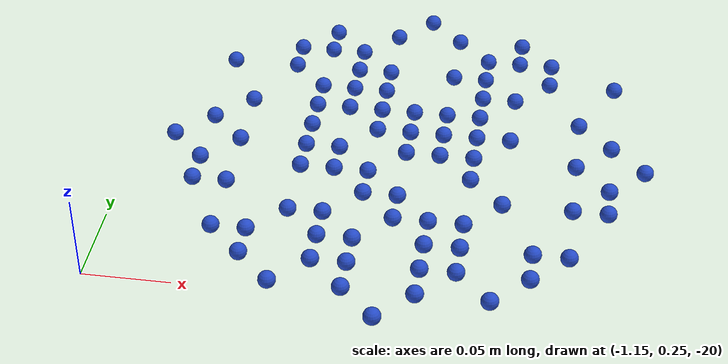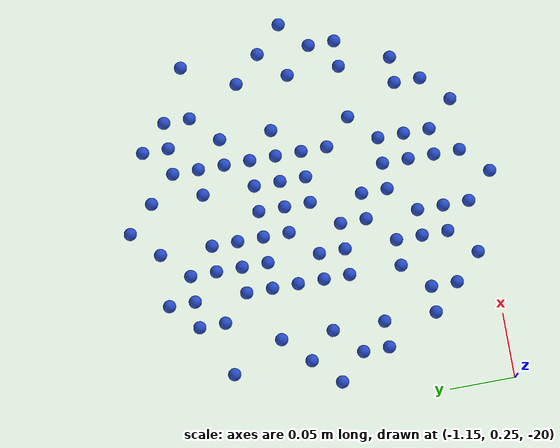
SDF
<sdf version="1.7">
 <model name="Washbasin_Water">
  <static>true</static>
  <link name="washbasin_water_br">
   <pose>-0.99 0.38 -20 0 0 0</pose>
   <visual name="green_mark_centre1_visual">
    <geometry><sphere><radius>0.005</radius></sphere></geometry>
    <material><script><name>Gazebo/BlueGlow</name></script></material>
   </visual>
   <visual name="green_mark_centre2_visual">
    <pose>0.02 0 0 0 0 0</pose>
    <geometry><sphere><radius>0.005</radius></sphere></geometry>
    <material><script><name>Gazebo/BlueGlow</name></script></material>
   </visual>
   <visual name="green_mark_centre4_visual">
    <pose>0.04 0 0 0 0 0</pose>
    <geometry><sphere><radius>0.005</radius></sphere></geometry>
    <material><script><name>Gazebo/BlueGlow</name></script></material>
   </visual>
   <visual name="green_mark_centre5_visual">
    <pose>-0.04 0 0 0 0 0</pose>
    <geometry><sphere><radius>0.005</radius></sphere></geometry>
    <material><script><name>Gazebo/BlueGlow</name></script></material>
   </visual>
   <visual name="green_mark_centre7_visual">
    <pose>-0.06 0 0 0 0 0</pose>
    <geometry><sphere><radius>0.005</radius></sphere></geometry>
    <material><script><name>Gazebo/BlueGlow</name></script></material>
   </visual>
   <visual name="green_mark_centre8_visual">
    <pose>0 0.02 0 0 0 0</pose>
    <geometry><sphere><radius>0.005</radius></sphere></geometry>
    <material><script><name>Gazebo/BlueGlow</name></script></material>
   </visual>
   <visual name="green_mark_centre10_visual">
    <pose>0 0.04 0 0 0 0</pose>
    <geometry><sphere><radius>0.005</radius></sphere></geometry>
    <material><script><name>Gazebo/BlueGlow</name></script></material>
   </visual>
   <visual name="green_mark_centre11_visual">
    <pose>0 -0.04 0 0 0 0</pose>
    <geometry><sphere><radius>0.005</radius></sphere></geometry>
    <material><script><name>Gazebo/BlueGlow</name></script></material>
   </visual>
   <visual name="green_mark_centre13_visual">
    <pose>0 -0.06 0 0 0 0</pose>
    <geometry><sphere><radius>0.005</radius></sphere></geometry>
    <material><script><name>Gazebo/BlueGlow</name></script></material>
   </visual>
   <visual name="green_mark_centre14_visual">
    <pose>0.02 0.02 0 0 0 0</pose>
    <geometry><sphere><radius>0.005</radius></sphere></geometry>
    <material><script><name>Gazebo/BlueGlow</name></script></material>
   </visual>
   <visual name="green_mark_centre16_visual">
    <pose>-0.02 -0.02 0 0 0 0</pose>
    <geometry><sphere><radius>0.005</radius></sphere></geometry>
    <material><script><name>Gazebo/BlueGlow</name></script></material>
   </visual>
   <visual name="green_mark_centre17_visual">
    <pose>-0.02 0.02 0 0 0 0</pose>
    <geometry><sphere><radius>0.005</radius></sphere></geometry>
    <material><script><name>Gazebo/BlueGlow</name></script></material>
   </visual>
   <visual name="green_mark_centre19_visual">
    <pose>0.04 0.04 0 0 0 0</pose>
    <geometry><sphere><radius>0.005</radius></sphere></geometry>
    <material><script><name>Gazebo/BlueGlow</name></script></material>
   </visual>
   <visual name="green_mark_centre20_visual">
    <pose>-0.04 0.04 0 0 0 0</pose>
    <geometry><sphere><radius>0.005</radius></sphere></geometry>
    <material><script><name>Gazebo/BlueGlow</name></script></material>
   </visual>
   <visual name="green_mark_centre22_visual">
    <pose>0.04 0.06 0 0 0 0</pose>
    <geometry><sphere><radius>0.005</radius></sphere></geometry>
    <material><script><name>Gazebo/BlueGlow</name></script></material>
   </visual>
   <visual name="green_mark_centre23_visual">
    <pose>0.04 -0.06 0 0 0 0</pose>
    <geometry><sphere><radius>0.005</radius></sphere></geometry>
    <material><script><name>Gazebo/BlueGlow</name></script></material>
   </visual>
   <visual name="green_mark_centre25_visual">
    <pose>-0.04 0.06 0 0 0 0</pose>
    <geometry><sphere><radius>0.005</radius></sphere></geometry>
    <material><script><name>Gazebo/BlueGlow</name></script></material>
   </visual>
   <visual name="green_mark_centre26_visual">
    <pose>-0.04 -0.06 0 0 0 0</pose>
    <geometry><sphere><radius>0.005</radius></sphere></geometry>
    <material><script><name>Gazebo/BlueGlow</name></script></material>
   </visual>
   <visual name="green_mark_centre28_visual">
    <pose>0.06 0.06 0 0 0 0</pose>
    <geometry><sphere><radius>0.005</radius></sphere></geometry>
    <material><script><name>Gazebo/BlueGlow</name></script></material>
   </visual>
   <visual name="green_mark_centre29_visual">
    <pose>-0.06 0.06 0 0 0 0</pose>
    <geometry><sphere><radius>0.005</radius></sphere></geometry>
    <material><script><name>Gazebo/BlueGlow</name></script></material>
   </visual>
   <visual name="green_mark_centre31_visual">
    <pose>-0.06 -0.06 0 0 0 0</pose>
    <geometry><sphere><radius>0.005</radius></sphere></geometry>
    <material><script><name>Gazebo/BlueGlow</name></script></material>
   </visual>
   <visual name="green_mark_centre32_visual">
    <pose>0.02 0.04 0 0 0 0</pose>
    <geometry><sphere><radius>0.005</radius></sphere></geometry>
    <material><script><name>Gazebo/BlueGlow</name></script></material>
   </visual>
   <visual name="green_mark_centre34_visual">
    <pose>-0.02 0.04 0 0 0 0</pose>
    <geometry><sphere><radius>0.005</radius></sphere></geometry>
    <material><script><name>Gazebo/BlueGlow</name></script></material>
   </visual>
   <visual name="green_mark_centre35_visual">
    <pose>-0.02 -0.04 0 0 0 0</pose>
    <geometry><sphere><radius>0.005</radius></sphere></geometry>
    <material><script><name>Gazebo/BlueGlow</name></script></material>
   </visual>
   <visual name="green_mark_centre37_visual">
    <pose>0.02 -0.06 0 0 0 0</pose>
    <geometry><sphere><radius>0.005</radius></sphere></geometry>
    <material><script><name>Gazebo/BlueGlow</name></script></material>
   </visual>
   <visual name="green_mark_centre38_visual">
    <pose>-0.02 0.06 0 0 0 0</pose>
    <geometry><sphere><radius>0.005</radius></sphere></geometry>
    <material><script><name>Gazebo/BlueGlow</name></script></material>
   </visual>
   <visual name="green_mark_centre40_visual">
    <pose>0.04 0.02 0 0 0 0</pose>
    <geometry><sphere><radius>0.005</radius></sphere></geometry>
    <material><script><name>Gazebo/BlueGlow</name></script></material>
   </visual>
   <visual name="green_mark_centre41_visual">
    <pose>0.04 -0.02 0 0 0 0</pose>
    <geometry><sphere><radius>0.005</radius></sphere></geometry>
    <material><script><name>Gazebo/BlueGlow</name></script></material>
   </visual>
   <visual name="green_mark_centre43_visual">
    <pose>-0.04 -0.02 0 0 0 0</pose>
    <geometry><sphere><radius>0.005</radius></sphere></geometry>
    <material><script><name>Gazebo/BlueGlow</name></script></material>
   </visual>
   <visual name="green_mark_centre44_visual">
    <pose>0.06 0.02 0 0 0 0</pose>
    <geometry><sphere><radius>0.005</radius></sphere></geometry>
    <material><script><name>Gazebo/BlueGlow</name></script></material>
   </visual>
   <visual name="green_mark_centre46_visual">
    <pose>-0.06 0.02 0 0 0 0</pose>
    <geometry><sphere><radius>0.005</radius></sphere></geometry>
    <material><script><name>Gazebo/BlueGlow</name></script></material>
   </visual>
   <visual name="green_mark_centre47_visual">
    <pose>-0.06 -0.02 0 0 0 0</pose>
    <geometry><sphere><radius>0.005</radius></sphere></geometry>
    <material><script><name>Gazebo/BlueGlow</name></script></material>
   </visual>
   <visual name="green_mark_centre49_visual">
    <pose>0.06 -0.04 0 0 0 0</pose>
    <geometry><sphere><radius>0.005</radius></sphere></geometry>
    <material><script><name>Gazebo/BlueGlow</name></script></material>
   </visual>
   <visual name="green_mark_centre50_visual">
    <pose>-0.06 0.04 0 0 0 0</pose>
    <geometry><sphere><radius>0.005</radius></sphere></geometry>
    <material><script><name>Gazebo/BlueGlow</name></script></material>
   </visual>
   <visual name="green_mark_top1_visual">
    <pose>-0.06 0.12 0 0 0 0</pose>
    <geometry><sphere><radius>0.005</radius></sphere></geometry>
    <material><script><name>Gazebo/BlueGlow</name></script></material>
   </visual>
   <visual name="green_mark_top2_visual">
    <pose>-0.06 0.10 0 0 0 0</pose>
    <geometry><sphere><radius>0.005</radius></sphere></geometry>
    <material><script><name>Gazebo/BlueGlow</name></script></material>
   </visual>
   <visual name="green_mark_top4_visual">
    <pose>-0.04 0.10 0 0 0 0</pose>
    <geometry><sphere><radius>0.005</radius></sphere></geometry>
    <material><script><name>Gazebo/BlueGlow</name></script></material>
   </visual>
   <visual name="green_mark_top7_visual">
    <pose>-0.04 0.08 0 0 0 0</pose>
    <geometry><sphere><radius>0.005</radius></sphere></geometry>
    <material><script><name>Gazebo/BlueGlow</name></script></material>
   </visual>
   <visual name="green_mark_top8_visual">
    <pose>-0.02 0.12 0 0 0 0</pose>
    <geometry><sphere><radius>0.005</radius></sphere></geometry>
    <material><script><name>Gazebo/BlueGlow</name></script></material>
   </visual>
   <visual name="green_mark_top10_visual">
    <pose>-0.02 0.12 0 0 0 0</pose>
    <geometry><sphere><radius>0.005</radius></sphere></geometry>
    <material><script><name>Gazebo/BlueGlow</name></script></material>
   </visual>
   <visual name="green_mark_top12_visual">
    <pose>-0.02 0.08 0 0 0 0</pose>
    <geometry><sphere><radius>0.005</radius></sphere></geometry>
    <material><script><name>Gazebo/BlueGlow</name></script></material>
   </visual>
   <visual name="green_mark_top14_visual">
    <pose>0.06 0.12 0 0 0 0</pose>
    <geometry><sphere><radius>0.005</radius></sphere></geometry>
    <material><script><name>Gazebo/BlueGlow</name></script></material>
   </visual>
   <visual name="green_mark_top15_visual">
    <pose>0.06 0.10 0 0 0 0</pose>
    <geometry><sphere><radius>0.005</radius></sphere></geometry>
    <material><script><name>Gazebo/BlueGlow</name></script></material>
   </visual>
   <visual name="green_mark_top17_visual">
    <pose>0.04 0.10 0 0 0 0</pose>
    <geometry><sphere><radius>0.005</radius></sphere></geometry>
    <material><script><name>Gazebo/BlueGlow</name></script></material>
   </visual>
   <visual name="green_mark_top20_visual">
    <pose>0.04 0.08 0 0 0 0</pose>
    <geometry><sphere><radius>0.005</radius></sphere></geometry>
    <material><script><name>Gazebo/BlueGlow</name></script></material>
   </visual>
   <visual name="green_mark_top21_visual">
    <pose>0.02 0.12 0 0 0 0</pose>
    <geometry><sphere><radius>0.005</radius></sphere></geometry>
    <material><script><name>Gazebo/BlueGlow</name></script></material>
   </visual>
   <visual name="green_mark_top23_visual">
    <pose>0.02 0.12 0 0 0 0</pose>
    <geometry><sphere><radius>0.005</radius></sphere></geometry>
    <material><script><name>Gazebo/BlueGlow</name></script></material>
   </visual>
   <visual name="green_mark_top25_visual">
    <pose>0.02 0.08 0 0 0 0</pose>
    <geometry><sphere><radius>0.005</radius></sphere></geometry>
    <material><script><name>Gazebo/BlueGlow</name></script></material>
   </visual>
   <visual name="green_mark_top88_visual">
    <pose>0.0 0.14 0 0 0 0</pose>
    <geometry><sphere><radius>0.005</radius></sphere></geometry>
    <material><script><name>Gazebo/BlueGlow</name></script></material>
   </visual>
   <visual name="green_mark_top89_visual">
    <pose>0.0 -0.14 0 0 0 0</pose>
    <geometry><sphere><radius>0.005</radius></sphere></geometry>
    <material><script><name>Gazebo/BlueGlow</name></script></material>
   </visual>
   <visual name="green_mark_top3_visual">
    <pose>-0.06 -0.12 0 0 0 0</pose>
    <geometry><sphere><radius>0.005</radius></sphere></geometry>
    <material><script><name>Gazebo/BlueGlow</name></script></material>
   </visual>
   <visual name="green_mark_top5_visual">
    <pose>-0.04 -0.10 0 0 0 0</pose>
    <geometry><sphere><radius>0.005</radius></sphere></geometry>
    <material><script><name>Gazebo/BlueGlow</name></script></material>
   </visual>
   <visual name="green_mark_top6_visual">
    <pose>-0.04 -0.08 0 0 0 0</pose>
    <geometry><sphere><radius>0.005</radius></sphere></geometry>
    <material><script><name>Gazebo/BlueGlow</name></script></material>
   </visual>
   <visual name="green_mark_top9_visual">
    <pose>-0.02 -0.12 0 0 0 0</pose>
    <geometry><sphere><radius>0.005</radius></sphere></geometry>
    <material><script><name>Gazebo/BlueGlow</name></script></material>
   </visual>
   <visual name="green_mark_top11_visual">
    <pose>-0.02 -0.10 0 0 0 0</pose>
    <geometry><sphere><radius>0.005</radius></sphere></geometry>
    <material><script><name>Gazebo/BlueGlow</name></script></material>
   </visual>
   <visual name="green_mark_top13_visual">
    <pose>-0.02 -0.08 0 0 0 0</pose>
    <geometry><sphere><radius>0.005</radius></sphere></geometry>
    <material><script><name>Gazebo/BlueGlow</name></script></material>
   </visual>
   <visual name="green_mark_top6_visual">
    <pose>-0.04 -0.08 0 0 0 0</pose>
    <geometry><sphere><radius>0.005</radius></sphere></geometry>
    <material><script><name>Gazebo/BlueGlow</name></script></material>
   </visual>
   <visual name="green_mark_top16_visual">
    <pose>0.06 -0.12 0 0 0 0</pose>
    <geometry><sphere><radius>0.005</radius></sphere></geometry>
    <material><script><name>Gazebo/BlueGlow</name></script></material>
   </visual>
   <visual name="green_mark_top18_visual">
    <pose>0.04 -0.10 0 0 0 0</pose>
    <geometry><sphere><radius>0.005</radius></sphere></geometry>
    <material><script><name>Gazebo/BlueGlow</name></script></material>
   </visual>
   <visual name="green_mark_top19_visual">
    <pose>0.04 -0.08 0 0 0 0</pose>
    <geometry><sphere><radius>0.005</radius></sphere></geometry>
    <material><script><name>Gazebo/BlueGlow</name></script></material>
   </visual>
   <visual name="green_mark_top22_visual">
    <pose>0.02 -0.12 0 0 0 0</pose>
    <geometry><sphere><radius>0.005</radius></sphere></geometry>
    <material><script><name>Gazebo/BlueGlow</name></script></material>
   </visual>
   <visual name="green_mark_top24_visual">
    <pose>0.02 -0.10 0 0 0 0</pose>
    <geometry><sphere><radius>0.005</radius></sphere></geometry>
    <material><script><name>Gazebo/BlueGlow</name></script></material>
   </visual>
   <visual name="green_mark_top26_visual">
    <pose>0.02 -0.08 0 0 0 0</pose>
    <geometry><sphere><radius>0.005</radius></sphere></geometry>
    <material><script><name>Gazebo/BlueGlow</name></script></material>
   </visual>
   <visual name="green_mark_top3_visual">
    <pose>-0.14 0 0 0 0 0</pose>
    <geometry><sphere><radius>0.005</radius></sphere></geometry>
    <material><script><name>Gazebo/BlueGlow</name></script></material>
   </visual>
   <visual name="green_mark_top365_visual">
    <pose>-0.12 0.08 0 0 0 0</pose>
    <geometry><sphere><radius>0.005</radius></sphere></geometry>
    <material><script><name>Gazebo/BlueGlow</name></script></material>
   </visual>
   <visual name="green_mark_top93_visual">
    <pose>-0.10 0 0 0 0 0</pose>
    <geometry><sphere><radius>0.005</radius></sphere></geometry>
    <material><script><name>Gazebo/BlueGlow</name></script></material>
   </visual>
   <visual name="green_mark_top5_visual">
    <pose>-0.12 0.02 0 0 0 0</pose>
    <geometry><sphere><radius>0.005</radius></sphere></geometry>
    <material><script><name>Gazebo/BlueGlow</name></script></material>
   </visual>
   <visual name="green_mark_top6_visual">
    <pose>-0.10 0.04 0 0 0 0</pose>
    <geometry><sphere><radius>0.005</radius></sphere></geometry>
    <material><script><name>Gazebo/BlueGlow</name></script></material>
   </visual>
   <visual name="green_mark_top20_visual">
    <pose>-0.08 0.10 0 0 0 0</pose>
    <geometry><sphere><radius>0.005</radius></sphere></geometry>
    <material><script><name>Gazebo/BlueGlow</name></script></material>
   </visual>
   <visual name="green_mark_top50_visual">
    <pose>-0.08 0.08 0 0 0 0</pose>
    <geometry><sphere><radius>0.005</radius></sphere></geometry>
    <material><script><name>Gazebo/BlueGlow</name></script></material>
   </visual>
   <visual name="green_mark_top3_visual">
    <pose>-0.12 -0.04 0 0 0 0</pose>
    <geometry><sphere><radius>0.005</radius></sphere></geometry>
    <material><script><name>Gazebo/BlueGlow</name></script></material>
   </visual>
   <visual name="green_mark_top5_visual">
    <pose>-0.12 -0.02 0 0 0 0</pose>
    <geometry><sphere><radius>0.005</radius></sphere></geometry>
    <material><script><name>Gazebo/BlueGlow</name></script></material>
   </visual>
   <visual name="green_mark_top6_visual">
    <pose>-0.10 -0.04 0 0 0 0</pose>
    <geometry><sphere><radius>0.005</radius></sphere></geometry>
    <material><script><name>Gazebo/BlueGlow</name></script></material>
   </visual>
   <visual name="green_mark_top6_visual">
    <pose>-0.10 -0.08 0 0 0 0</pose>
    <geometry><sphere><radius>0.005</radius></sphere></geometry>
    <material><script><name>Gazebo/BlueGlow</name></script></material>
   </visual>
   <visual name="green_mark_top20_visual">
    <pose>-0.08 -0.10 0 0 0 0</pose>
    <geometry><sphere><radius>0.005</radius></sphere></geometry>
    <material><script><name>Gazebo/BlueGlow</name></script></material>
   </visual>
   <visual name="green_mark_top50_visual">
    <pose>-0.08 -0.08 0 0 0 0</pose>
    <geometry><sphere><radius>0.005</radius></sphere></geometry>
    <material><script><name>Gazebo/BlueGlow</name></script></material>
   </visual>
   <visual name="green_mark_top3_visual">
    <pose>0.14 0 0 0 0 0</pose>
    <geometry><sphere><radius>0.005</radius></sphere></geometry>
    <material><script><name>Gazebo/BlueGlow</name></script></material>
   </visual>
   <visual name="green_mark_top365_visual">
    <pose>0.12 0.08 0 0 0 0</pose>
    <geometry><sphere><radius>0.005</radius></sphere></geometry>
    <material><script><name>Gazebo/BlueGlow</name></script></material>
   </visual>
   <visual name="green_mark_top93_visual">
    <pose>0.10 0 0 0 0 0</pose>
    <geometry><sphere><radius>0.005</radius></sphere></geometry>
    <material><script><name>Gazebo/BlueGlow</name></script></material>
   </visual>
   <visual name="green_mark_top5_visual">
    <pose>0.12 0.02 0 0 0 0</pose>
    <geometry><sphere><radius>0.005</radius></sphere></geometry>
    <material><script><name>Gazebo/BlueGlow</name></script></material>
   </visual>
   <visual name="green_mark_top6_visual">
    <pose>0.10 0.04 0 0 0 0</pose>
    <geometry><sphere><radius>0.005</radius></sphere></geometry>
    <material><script><name>Gazebo/BlueGlow</name></script></material>
   </visual>
   <visual name="green_mark_top20_visual">
    <pose>0.08 0.10 0 0 0 0</pose>
    <geometry><sphere><radius>0.005</radius></sphere></geometry>
    <material><script><name>Gazebo/BlueGlow</name></script></material>
   </visual>
   <visual name="green_mark_top50_visual">
    <pose>0.08 0.08 0 0 0 0</pose>
    <geometry><sphere><radius>0.005</radius></sphere></geometry>
    <material><script><name>Gazebo/BlueGlow</name></script></material>
   </visual>
   <visual name="green_mark_top3_visual">
    <pose>0.12 -0.04 0 0 0 0</pose>
    <geometry><sphere><radius>0.005</radius></sphere></geometry>
    <material><script><name>Gazebo/BlueGlow</name></script></material>
   </visual>
   <visual name="green_mark_top5_visual">
    <pose>0.12 -0.02 0 0 0 0</pose>
    <geometry><sphere><radius>0.005</radius></sphere></geometry>
    <material><script><name>Gazebo/BlueGlow</name></script></material>
   </visual>
   <visual name="green_mark_top6_visual">
    <pose>0.10 -0.04 0 0 0 0</pose>
    <geometry><sphere><radius>0.005</radius></sphere></geometry>
    <material><script><name>Gazebo/BlueGlow</name></script></material>
   </visual>
   <visual name="green_mark_top6_visual">
    <pose>0.10 -0.08 0 0 0 0</pose>
    <geometry><sphere><radius>0.005</radius></sphere></geometry>
    <material><script><name>Gazebo/BlueGlow</name></script></material>
   </visual>
   <visual name="green_mark_top20_visual">
    <pose>0.08 -0.10 0 0 0 0</pose>
    <geometry><sphere><radius>0.005</radius></sphere></geometry>
    <material><script><name>Gazebo/BlueGlow</name></script></material>
   </visual>
   <visual name="green_mark_top50_visual">
    <pose>0.08 -0.08 0 0 0 0</pose>
    <geometry><sphere><radius>0.005</radius></sphere></geometry>
    <material><script><name>Gazebo/BlueGlow</name></script></material>
   </visual>
  </link>
 </model>
</sdf>
